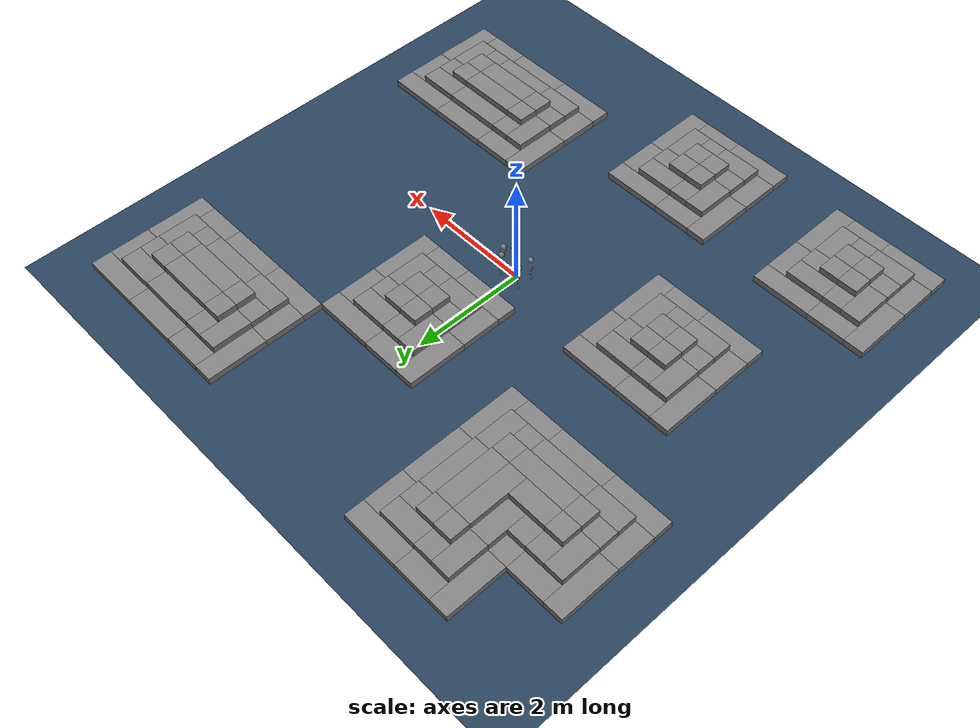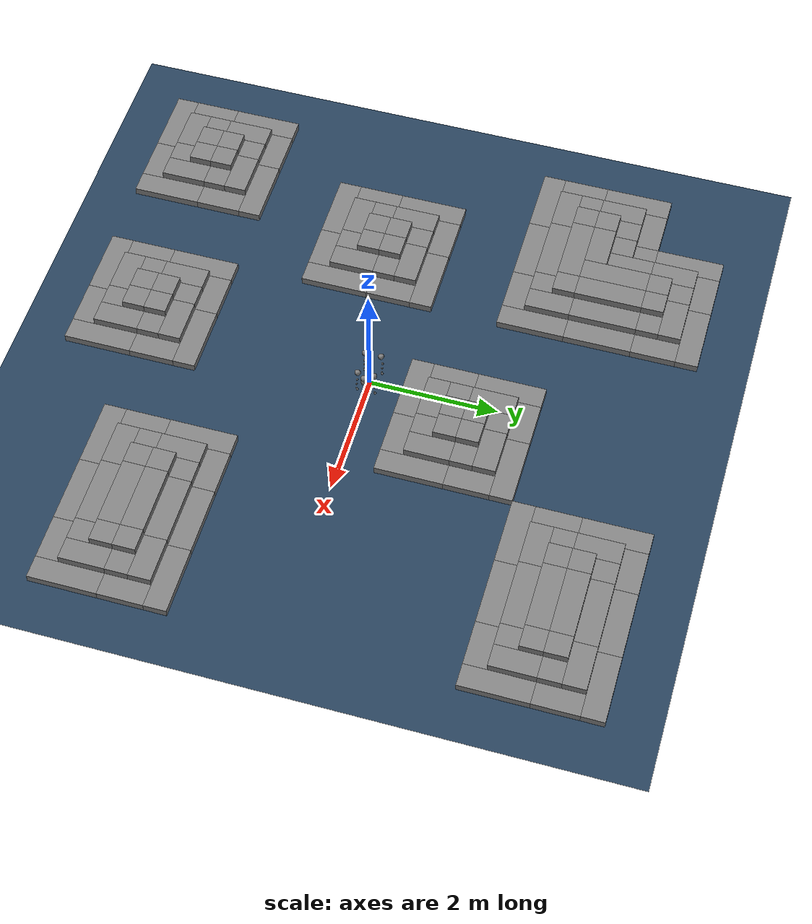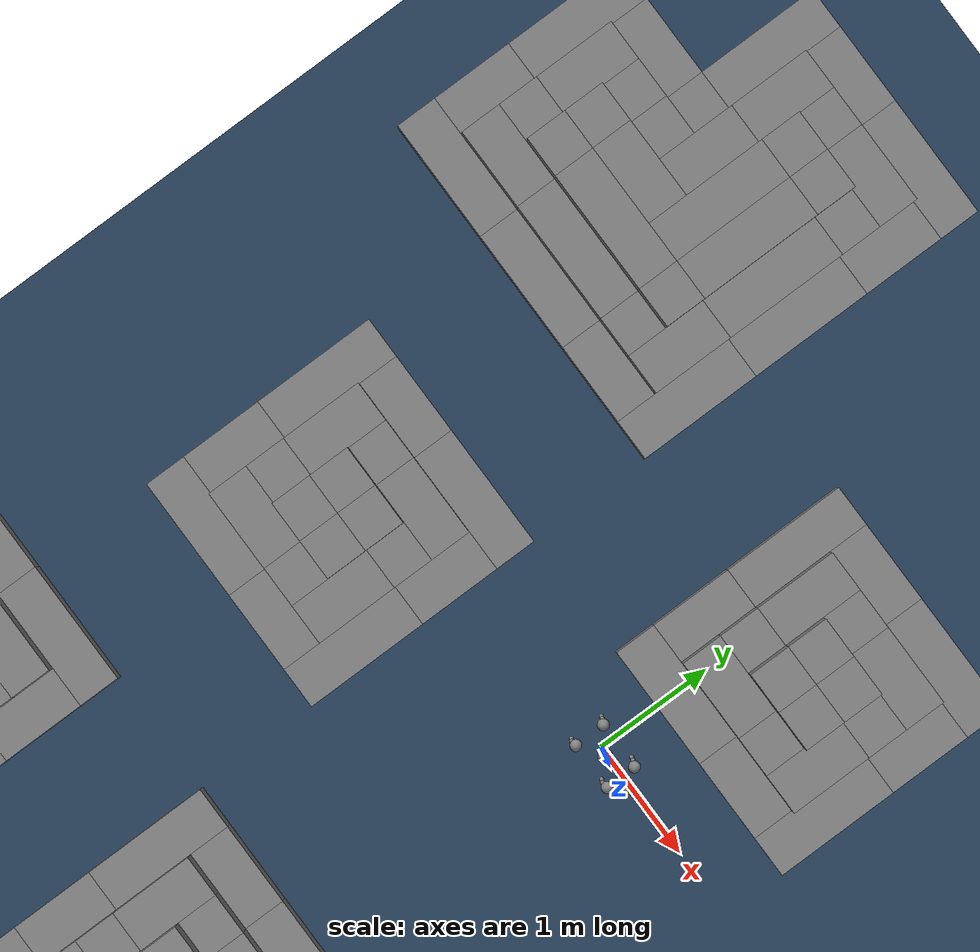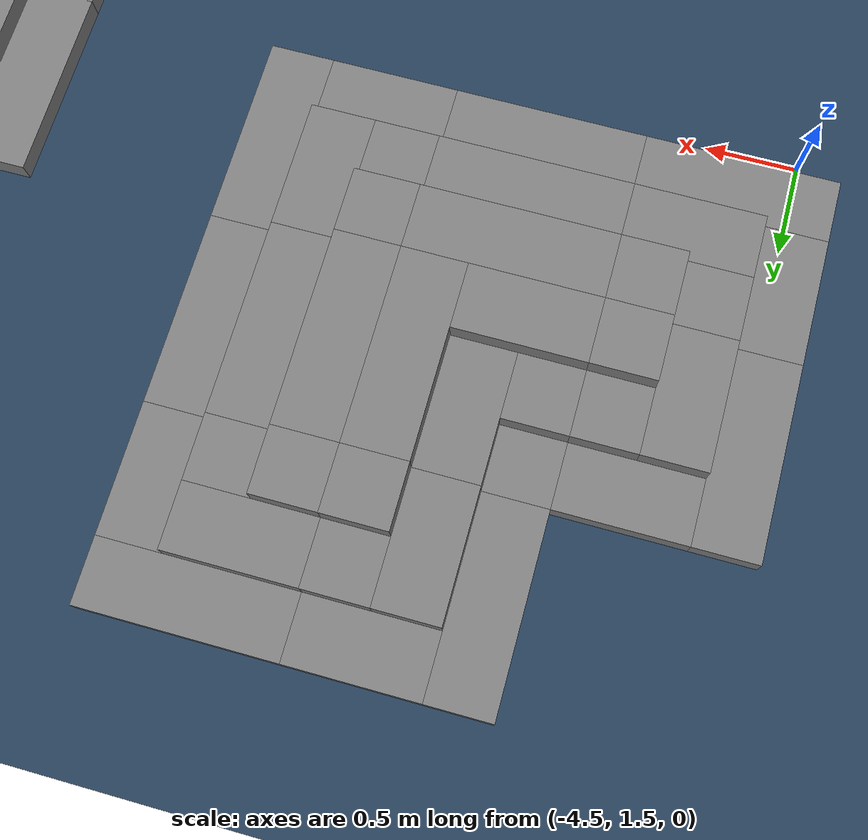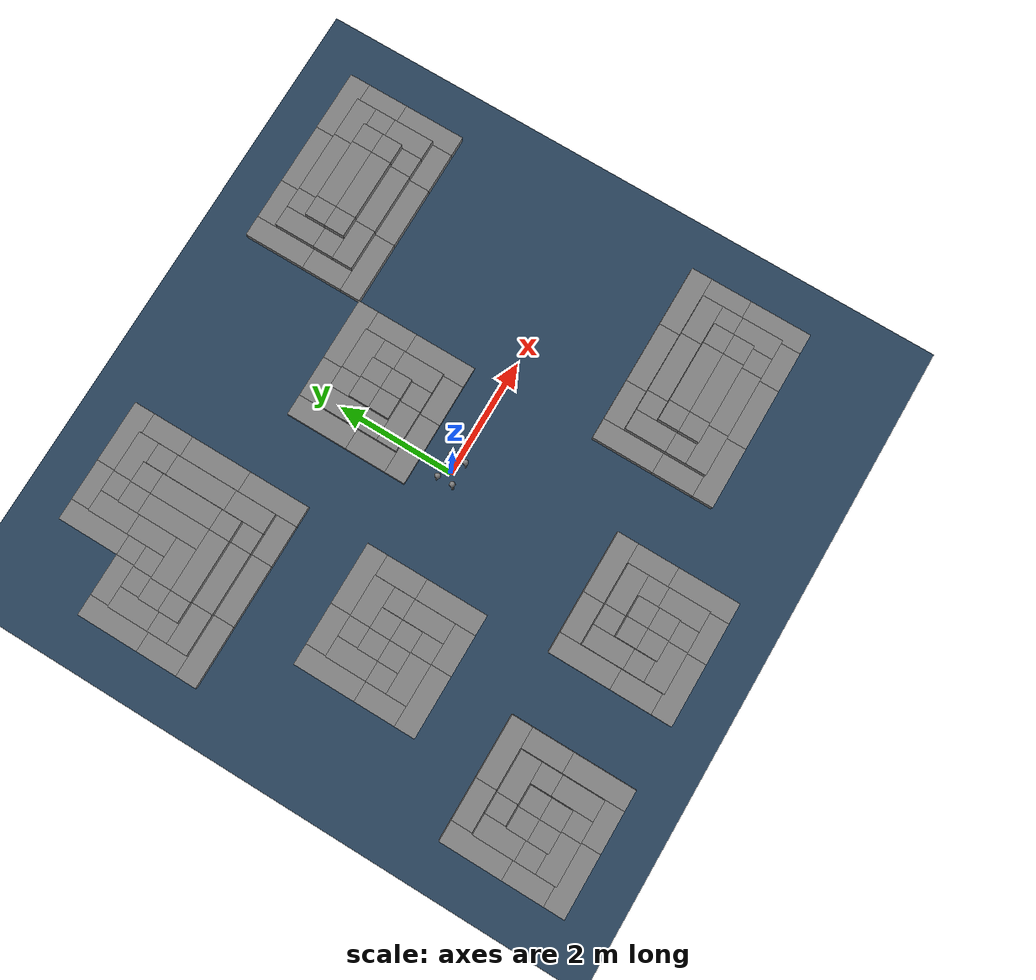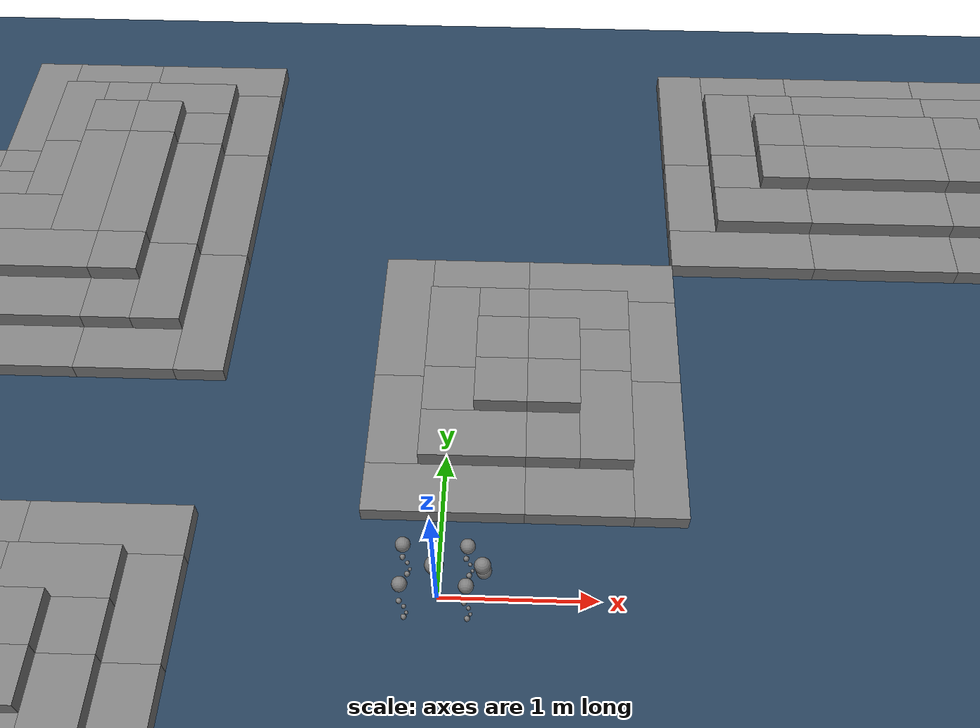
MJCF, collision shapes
<mujoco model="go2 scene">
  <include file="go2_mjx_feetonly.xml" />

  <statistic center="0 0 0.1" extent="0.8" />

  <visual>
    <headlight diffuse="0.6 0.6 0.6" ambient="0.3 0.3 0.3" specular="0 0 0" />
    <rgba haze="0.15 0.25 0.35 1" />
    <global azimuth="-130" elevation="-20" />
  </visual>

  <asset>
    <texture type="skybox" builtin="gradient" rgb1="0.3 0.5 0.7" rgb2="0 0 0" width="512" height="3072" />
    <texture type="2d" name="groundplane" builtin="checker" mark="edge" rgb1="0.2 0.3 0.4" rgb2="0.1 0.2 0.3" markrgb="0.8 0.8 0.8" width="300" height="300" />
    <material name="groundplane" texture="groundplane" texuniform="true" texrepeat="5 5" reflectance="0.2" />
  </asset>

  <worldbody>
    <light pos="0 0 1.5" dir="0 0 -1" directional="true" />
    <geom name="floor" pos="0 0 0" size="0 0 0.01" type="plane" contype="2" conaffinity="1" material="groundplane" />
  <body pos="-3.849999999999999 -3.849999999999999 0.18" quat="0.7071067811865476 0.0 0.0 -0.7071067811865475" name="box_AIFip"><geom type="box" size="0.175 0.175 0.18" contype="2" conaffinity="1" /></body><body pos="-4.0249999999999995 -4.199999999999999 0.12" quat="0.7071067811865476 0.0 0.0 -0.7071067811865475" name="box_nv4MJ"><geom type="box" size="0.175 0.35 0.12" contype="2" conaffinity="1" /></body><body pos="-4.199999999999999 -4.549999999999999 0.06" quat="0.7071067811865476 0.0 0.0 -0.7071067811865475" name="box_QGifX"><geom type="box" size="0.175 0.5249999999999999 0.06" contype="2" conaffinity="1" /></body><body pos="-4.199999999999999 -3.849999999999999 0.12" quat="1.0 0.0 0.0 0.0" name="box_r6D7p"><geom type="box" size="0.175 0.175 0.12" contype="2" conaffinity="1" /></body><body pos="-4.549999999999999 -4.0249999999999995 0.06" quat="1.0 0.0 0.0 0.0" name="box_xC0N9"><geom type="box" size="0.175 0.35 0.06" contype="2" conaffinity="1" /></body><body pos="-3.849999999999999 -3.4999999999999996 0.18" quat="6.123233995736766e-17 0.0 0.0 1.0" name="box_DC2EQ"><geom type="box" size="0.175 0.175 0.18" contype="2" conaffinity="1" /></body><body pos="-4.199999999999999 -3.3249999999999993 0.12" quat="6.123233995736766e-17 0.0 0.0 1.0" name="box_uaHC7"><geom type="box" size="0.175 0.35 0.12" contype="2" conaffinity="1" /></body><body pos="-4.549999999999999 -3.1499999999999995 0.06" quat="6.123233995736766e-17 0.0 0.0 1.0" name="box_5Ppau"><geom type="box" size="0.175 0.5249999999999999 0.06" contype="2" conaffinity="1" /></body><body pos="-3.849999999999999 -3.1499999999999995 0.12" quat="-0.7071067811865475 -0.0 0.0 0.7071067811865476" name="box_zx6eL"><geom type="box" size="0.175 0.175 0.12" contype="2" conaffinity="1" /></body><body pos="-4.0249999999999995 -2.7999999999999994 0.06" quat="-0.7071067811865475 -0.0 0.0 0.7071067811865476" name="box_DW6wW"><geom type="box" size="0.175 0.35 0.06" contype="2" conaffinity="1" /></body><body pos="-3.849999999999999 2.4499999999999997 0.18" quat="0.7071067811865476 0.0 0.0 -0.7071067811865475" name="box_NU5Nk"><geom type="box" size="0.175 0.175 0.18" contype="2" conaffinity="1" /></body><body pos="-4.0249999999999995 2.0999999999999996 0.12" quat="0.7071067811865476 0.0 0.0 -0.7071067811865475" name="box_gkHAz"><geom type="box" size="0.175 0.35 0.12" contype="2" conaffinity="1" /></body><body pos="-4.199999999999999 1.7499999999999996 0.06" quat="0.7071067811865476 0.0 0.0 -0.7071067811865475" name="box_mhC9z"><geom type="box" size="0.175 0.5249999999999999 0.06" contype="2" conaffinity="1" /></body><body pos="-4.199999999999999 2.4499999999999997 0.12" quat="1.0 0.0 0.0 0.0" name="box_bfGwb"><geom type="box" size="0.175 0.175 0.12" contype="2" conaffinity="1" /></body><body pos="-4.549999999999999 2.2749999999999995 0.06" quat="1.0 0.0 0.0 0.0" name="box_3OCio"><geom type="box" size="0.175 0.35 0.06" contype="2" conaffinity="1" /></body><body pos="-3.849999999999999 2.7999999999999994 0.18" quat="6.123233995736766e-17 0.0 0.0 1.0" name="box_HyhEw"><geom type="box" size="0.175 0.175 0.18" contype="2" conaffinity="1" /></body><body pos="-4.199999999999999 2.9749999999999996 0.12" quat="6.123233995736766e-17 0.0 0.0 1.0" name="box_ZMXPr"><geom type="box" size="0.175 0.35 0.12" contype="2" conaffinity="1" /></body><body pos="-4.549999999999999 3.1499999999999995 0.06" quat="6.123233995736766e-17 0.0 0.0 1.0" name="box_W3EP4"><geom type="box" size="0.175 0.5249999999999999 0.06" contype="2" conaffinity="1" /></body><body pos="-3.849999999999999 3.1499999999999995 0.12" quat="-0.7071067811865475 -0.0 0.0 0.7071067811865476" name="box_88S2Z"><geom type="box" size="0.175 0.175 0.12" contype="2" conaffinity="1" /></body><body pos="-4.0249999999999995 3.4999999999999996 0.06" quat="-0.7071067811865475 -0.0 0.0 0.7071067811865476" name="box_mtWqh"><geom type="box" size="0.175 0.35 0.06" contype="2" conaffinity="1" /></body><body pos="-3.4999999999999996 -3.849999999999999 0.18" quat="1.0 0.0 0.0 0.0" name="box_i3d27"><geom type="box" size="0.175 0.175 0.18" contype="2" conaffinity="1" /></body><body pos="-3.1499999999999995 -4.0249999999999995 0.12" quat="1.0 0.0 0.0 0.0" name="box_wXhQ3"><geom type="box" size="0.175 0.35 0.12" contype="2" conaffinity="1" /></body><body pos="-2.7999999999999994 -4.199999999999999 0.06" quat="1.0 0.0 0.0 0.0" name="box_G2qaF"><geom type="box" size="0.175 0.5249999999999999 0.06" contype="2" conaffinity="1" /></body><body pos="-3.4999999999999996 -4.199999999999999 0.12" quat="0.7071067811865476 0.0 0.0 0.7071067811865475" name="box_hZyme"><geom type="box" size="0.175 0.175 0.12" contype="2" conaffinity="1" /></body><body pos="-3.3249999999999993 -4.549999999999999 0.06" quat="0.7071067811865476 0.0 0.0 0.7071067811865475" name="box_RIgqd"><geom type="box" size="0.175 0.35 0.06" contype="2" conaffinity="1" /></body><body pos="-3.4999999999999996 -3.4999999999999996 0.18" quat="0.7071067811865476 0.0 0.0 0.7071067811865475" name="box_a3YLr"><geom type="box" size="0.175 0.175 0.18" contype="2" conaffinity="1" /></body><body pos="-3.3249999999999993 -3.1499999999999995 0.12" quat="0.7071067811865476 0.0 0.0 0.7071067811865475" name="box_hRZOy"><geom type="box" size="0.175 0.35 0.12" contype="2" conaffinity="1" /></body><body pos="-3.1499999999999995 -2.7999999999999994 0.06" quat="0.7071067811865476 0.0 0.0 0.7071067811865475" name="box_eRNLj"><geom type="box" size="0.175 0.5249999999999999 0.06" contype="2" conaffinity="1" /></body><body pos="-3.1499999999999995 -3.4999999999999996 0.12" quat="6.123233995736766e-17 0.0 0.0 1.0" name="box_xsIkE"><geom type="box" size="0.175 0.175 0.12" contype="2" conaffinity="1" /></body><body pos="-2.7999999999999994 -3.3249999999999993 0.06" quat="6.123233995736766e-17 0.0 0.0 1.0" name="box_dg2Ks"><geom type="box" size="0.175 0.35 0.06" contype="2" conaffinity="1" /></body><body pos="-2.7999999999999994 -0.6999999999999998 0.18" quat="0.7071067811865476 0.0 0.0 -0.7071067811865475" name="box_KA7wU"><geom type="box" size="0.175 0.175 0.18" contype="2" conaffinity="1" /></body><body pos="-2.9749999999999996 -1.0499999999999998 0.12" quat="0.7071067811865476 0.0 0.0 -0.7071067811865475" name="box_vxfkl"><geom type="box" size="0.175 0.35 0.12" contype="2" conaffinity="1" /></body><body pos="-3.1499999999999995 -1.4 0.06" quat="0.7071067811865476 0.0 0.0 -0.7071067811865475" name="box_wRV5f"><geom type="box" size="0.175 0.5249999999999999 0.06" contype="2" conaffinity="1" /></body><body pos="-3.1499999999999995 -0.7 0.12" quat="1.0 0.0 0.0 0.0" name="box_qTnPS"><geom type="box" size="0.175 0.175 0.12" contype="2" conaffinity="1" /></body><body pos="-3.4999999999999996 -0.8749999999999999 0.06" quat="1.0 0.0 0.0 0.0" name="box_PWXL8"><geom type="box" size="0.175 0.35 0.06" contype="2" conaffinity="1" /></body><body pos="-2.7999999999999994 -0.35 0.18" quat="6.123233995736766e-17 0.0 0.0 1.0" name="box_uhnH9"><geom type="box" size="0.175 0.175 0.18" contype="2" conaffinity="1" /></body><body pos="-3.1499999999999995 -0.17499999999999993 0.12" quat="6.123233995736766e-17 0.0 0.0 1.0" name="box_SK9O6"><geom type="box" size="0.175 0.35 0.12" contype="2" conaffinity="1" /></body><body pos="-3.4999999999999996 9.837378920141519e-17 0.06" quat="6.123233995736766e-17 0.0 0.0 1.0" name="box_eXKTR"><geom type="box" size="0.175 0.5249999999999999 0.06" contype="2" conaffinity="1" /></body><body pos="-2.7999999999999994 -8.782805723978197e-18 0.12" quat="-0.7071067811865475 -0.0 0.0 0.7071067811865476" name="box_4VFML"><geom type="box" size="0.175 0.175 0.12" contype="2" conaffinity="1" /></body><body pos="-2.9749999999999996 0.35 0.06" quat="-0.7071067811865475 -0.0 0.0 0.7071067811865476" name="box_xr35J"><geom type="box" size="0.175 0.35 0.06" contype="2" conaffinity="1" /></body><body pos="-3.1499999999999995 1.7499999999999998 0.06" quat="0.7071067811865476 0.0 0.0 0.7071067811865475" name="box_yuuOr"><geom type="box" size="0.175 0.5249999999999999 0.06" contype="2" conaffinity="1" /></body><body pos="-3.1499999999999995 2.0999999999999996 0.12" quat="0.7071067811865476 0.0 0.0 0.7071067811865475" name="box_yrxDo"><geom type="box" size="0.175 0.5249999999999999 0.12" contype="2" conaffinity="1" /></body><body pos="-3.1499999999999995 2.4499999999999997 0.18" quat="0.7071067811865476 0.0 0.0 0.7071067811865475" name="box_pL0op"><geom type="box" size="0.175 0.5249999999999999 0.18" contype="2" conaffinity="1" /></body><body pos="-3.4999999999999996 3.4999999999999996 0.06" quat="1.0 0.0 0.0 0.0" name="box_T4rF1"><geom type="box" size="0.175 0.175 0.06" contype="2" conaffinity="1" /></body><body pos="-3.1499999999999995 3.3249999999999993 0.12" quat="1.0 0.0 0.0 0.0" name="box_aNq4J"><geom type="box" size="0.175 0.35 0.12" contype="2" conaffinity="1" /></body><body pos="-2.7999999999999994 3.1499999999999995 0.18" quat="1.0 0.0 0.0 0.0" name="box_5J7Sk"><geom type="box" size="0.175 0.5249999999999999 0.18" contype="2" conaffinity="1" /></body><body pos="-3.4999999999999996 3.1499999999999995 0.12" quat="0.7071067811865476 0.0 0.0 0.7071067811865475" name="box_yrr0K"><geom type="box" size="0.175 0.175 0.12" contype="2" conaffinity="1" /></body><body pos="-3.3249999999999993 2.7999999999999994 0.18" quat="0.7071067811865476 0.0 0.0 0.7071067811865475" name="box_4k6K8"><geom type="box" size="0.175 0.35 0.18" contype="2" conaffinity="1" /></body><body pos="-2.7999999999999994 3.849999999999999 0.18" quat="6.123233995736766e-17 0.0 0.0 1.0" name="box_h932d"><geom type="box" size="0.175 0.175 0.18" contype="2" conaffinity="1" /></body><body pos="-3.1499999999999995 4.0249999999999995 0.12" quat="6.123233995736766e-17 0.0 0.0 1.0" name="box_4vOJz"><geom type="box" size="0.175 0.35 0.12" contype="2" conaffinity="1" /></body><body pos="-3.4999999999999996 4.199999999999999 0.06" quat="6.123233995736766e-17 0.0 0.0 1.0" name="box_5oMNA"><geom type="box" size="0.175 0.5249999999999999 0.06" contype="2" conaffinity="1" /></body><body pos="-2.7999999999999994 4.199999999999999 0.12" quat="-0.7071067811865475 -0.0 0.0 0.7071067811865476" name="box_qfQFT"><geom type="box" size="0.175 0.175 0.12" contype="2" conaffinity="1" /></body><body pos="-2.9749999999999996 4.549999999999999 0.06" quat="-0.7071067811865475 -0.0 0.0 0.7071067811865476" name="box_kBUMP"><geom type="box" size="0.175 0.35 0.06" contype="2" conaffinity="1" /></body><body pos="-2.4499999999999997 -0.7 0.18" quat="1.0 0.0 0.0 0.0" name="box_cWTyL"><geom type="box" size="0.175 0.175 0.18" contype="2" conaffinity="1" /></body><body pos="-2.0999999999999996 -0.8749999999999999 0.12" quat="1.0 0.0 0.0 0.0" name="box_lNJ7c"><geom type="box" size="0.175 0.35 0.12" contype="2" conaffinity="1" /></body><body pos="-1.7499999999999996 -1.0499999999999998 0.06" quat="1.0 0.0 0.0 0.0" name="box_scc5J"><geom type="box" size="0.175 0.5249999999999999 0.06" contype="2" conaffinity="1" /></body><body pos="-2.4499999999999997 -1.0499999999999998 0.12" quat="0.7071067811865476 0.0 0.0 0.7071067811865475" name="box_IepkR"><geom type="box" size="0.175 0.175 0.12" contype="2" conaffinity="1" /></body><body pos="-2.2749999999999995 -1.4 0.06" quat="0.7071067811865476 0.0 0.0 0.7071067811865475" name="box_j6lY9"><geom type="box" size="0.175 0.35 0.06" contype="2" conaffinity="1" /></body><body pos="-2.4499999999999997 -0.35 0.18" quat="0.7071067811865476 0.0 0.0 0.7071067811865475" name="box_6NywM"><geom type="box" size="0.175 0.175 0.18" contype="2" conaffinity="1" /></body><body pos="-2.2749999999999995 1.0715659492539337e-17 0.12" quat="0.7071067811865476 0.0 0.0 0.7071067811865475" name="box_Ntf3K"><geom type="box" size="0.175 0.35 0.12" contype="2" conaffinity="1" /></body><body pos="-2.0999999999999996 0.35 0.06" quat="0.7071067811865476 0.0 0.0 0.7071067811865475" name="box_AOQFd"><geom type="box" size="0.175 0.5249999999999999 0.06" contype="2" conaffinity="1" /></body><body pos="-2.0999999999999996 -0.3499999999999999 0.12" quat="6.123233995736766e-17 0.0 0.0 1.0" name="box_Sf9GV"><geom type="box" size="0.175 0.175 0.12" contype="2" conaffinity="1" /></body><body pos="-1.7499999999999996 -0.175 0.06" quat="6.123233995736766e-17 0.0 0.0 1.0" name="box_QyYU8"><geom type="box" size="0.175 0.35 0.06" contype="2" conaffinity="1" /></body><body pos="-2.4499999999999997 2.4499999999999997 0.18" quat="1.0 0.0 0.0 0.0" name="box_JuqR2"><geom type="box" size="0.175 0.175 0.18" contype="2" conaffinity="1" /></body><body pos="-2.0999999999999996 2.2749999999999995 0.12" quat="1.0 0.0 0.0 0.0" name="box_XTDxY"><geom type="box" size="0.175 0.35 0.12" contype="2" conaffinity="1" /></body><body pos="-1.7499999999999996 2.0999999999999996 0.06" quat="1.0 0.0 0.0 0.0" name="box_7fyXA"><geom type="box" size="0.175 0.5249999999999999 0.06" contype="2" conaffinity="1" /></body><body pos="-2.4499999999999997 2.0999999999999996 0.12" quat="0.7071067811865476 0.0 0.0 0.7071067811865475" name="box_QERk6"><geom type="box" size="0.175 0.175 0.12" contype="2" conaffinity="1" /></body><body pos="-2.2749999999999995 1.7499999999999996 0.06" quat="0.7071067811865476 0.0 0.0 0.7071067811865475" name="box_Wvl9c"><geom type="box" size="0.175 0.35 0.06" contype="2" conaffinity="1" /></body><body pos="-1.7499999999999998 3.1499999999999995 0.06" quat="6.123233995736766e-17 0.0 0.0 1.0" name="box_OwxfQ"><geom type="box" size="0.175 0.5249999999999999 0.06" contype="2" conaffinity="1" /></body><body pos="-2.0999999999999996 3.1499999999999995 0.12" quat="6.123233995736766e-17 0.0 0.0 1.0" name="box_6I2Un"><geom type="box" size="0.175 0.5249999999999999 0.12" contype="2" conaffinity="1" /></body><body pos="-2.4499999999999997 3.1499999999999995 0.18" quat="6.123233995736766e-17 0.0 0.0 1.0" name="box_XK8Y8"><geom type="box" size="0.175 0.5249999999999999 0.18" contype="2" conaffinity="1" /></body><body pos="-2.4499999999999997 3.849999999999999 0.18" quat="0.7071067811865476 0.0 0.0 0.7071067811865475" name="box_4FMN6"><geom type="box" size="0.175 0.175 0.18" contype="2" conaffinity="1" /></body><body pos="-2.2749999999999995 4.199999999999999 0.12" quat="0.7071067811865476 0.0 0.0 0.7071067811865475" name="box_xaOG8"><geom type="box" size="0.175 0.35 0.12" contype="2" conaffinity="1" /></body><body pos="-2.0999999999999996 4.549999999999999 0.06" quat="0.7071067811865476 0.0 0.0 0.7071067811865475" name="box_53BPu"><geom type="box" size="0.175 0.5249999999999999 0.06" contype="2" conaffinity="1" /></body><body pos="-2.0999999999999996 3.849999999999999 0.12" quat="6.123233995736766e-17 0.0 0.0 1.0" name="box_2a0wY"><geom type="box" size="0.175 0.175 0.12" contype="2" conaffinity="1" /></body><body pos="-1.7499999999999996 4.0249999999999995 0.06" quat="6.123233995736766e-17 0.0 0.0 1.0" name="box_TbYOM"><geom type="box" size="0.175 0.35 0.06" contype="2" conaffinity="1" /></body><body pos="-0.7 -3.849999999999999 0.18" quat="0.7071067811865476 0.0 0.0 -0.7071067811865475" name="box_7bIcF"><geom type="box" size="0.175 0.175 0.18" contype="2" conaffinity="1" /></body><body pos="-0.8749999999999999 -4.199999999999999 0.12" quat="0.7071067811865476 0.0 0.0 -0.7071067811865475" name="box_SNvJc"><geom type="box" size="0.175 0.35 0.12" contype="2" conaffinity="1" /></body><body pos="-1.0499999999999998 -4.549999999999999 0.06" quat="0.7071067811865476 0.0 0.0 -0.7071067811865475" name="box_4tV38"><geom type="box" size="0.175 0.5249999999999999 0.06" contype="2" conaffinity="1" /></body><body pos="-1.0499999999999998 -3.849999999999999 0.12" quat="1.0 0.0 0.0 0.0" name="box_otgOa"><geom type="box" size="0.175 0.175 0.12" contype="2" conaffinity="1" /></body><body pos="-1.4 -4.0249999999999995 0.06" quat="1.0 0.0 0.0 0.0" name="box_8IZMy"><geom type="box" size="0.175 0.35 0.06" contype="2" conaffinity="1" /></body><body pos="-0.7 -3.4999999999999996 0.18" quat="6.123233995736766e-17 0.0 0.0 1.0" name="box_E4EBZ"><geom type="box" size="0.175 0.175 0.18" contype="2" conaffinity="1" /></body><body pos="-1.0499999999999998 -3.3249999999999993 0.12" quat="6.123233995736766e-17 0.0 0.0 1.0" name="box_Secfa"><geom type="box" size="0.175 0.35 0.12" contype="2" conaffinity="1" /></body><body pos="-1.4 -3.1499999999999995 0.06" quat="6.123233995736766e-17 0.0 0.0 1.0" name="box_Kb8Ib"><geom type="box" size="0.175 0.5249999999999999 0.06" contype="2" conaffinity="1" /></body><body pos="-0.7 -3.1499999999999995 0.12" quat="-0.7071067811865475 -0.0 0.0 0.7071067811865476" name="box_fIGuS"><geom type="box" size="0.175 0.175 0.12" contype="2" conaffinity="1" /></body><body pos="-0.8749999999999998 -2.7999999999999994 0.06" quat="-0.7071067811865475 -0.0 0.0 0.7071067811865476" name="box_RD8Qn"><geom type="box" size="0.175 0.35 0.06" contype="2" conaffinity="1" /></body><body pos="-0.35 -3.849999999999999 0.18" quat="1.0 0.0 0.0 0.0" name="box_FAtda"><geom type="box" size="0.175 0.175 0.18" contype="2" conaffinity="1" /></body><body pos="0.0 -4.0249999999999995 0.12" quat="1.0 0.0 0.0 0.0" name="box_SJeok"><geom type="box" size="0.175 0.35 0.12" contype="2" conaffinity="1" /></body><body pos="0.35 -4.199999999999999 0.06" quat="1.0 0.0 0.0 0.0" name="box_mf57p"><geom type="box" size="0.175 0.5249999999999999 0.06" contype="2" conaffinity="1" /></body><body pos="-0.3499999999999999 -4.199999999999999 0.12" quat="0.7071067811865476 0.0 0.0 0.7071067811865475" name="box_spx2j"><geom type="box" size="0.175 0.175 0.12" contype="2" conaffinity="1" /></body><body pos="-0.17499999999999996 -4.549999999999999 0.06" quat="0.7071067811865476 0.0 0.0 0.7071067811865475" name="box_XdNSW"><geom type="box" size="0.175 0.35 0.06" contype="2" conaffinity="1" /></body><body pos="-0.3499999999999999 -3.4999999999999996 0.18" quat="0.7071067811865476 0.0 0.0 0.7071067811865475" name="box_EEI0t"><geom type="box" size="0.175 0.175 0.18" contype="2" conaffinity="1" /></body><body pos="-0.17499999999999993 -3.1499999999999995 0.12" quat="0.7071067811865476 0.0 0.0 0.7071067811865475" name="box_NUCGI"><geom type="box" size="0.175 0.35 0.12" contype="2" conaffinity="1" /></body><body pos="7.694247021633651e-17 -2.7999999999999994 0.06" quat="0.7071067811865476 0.0 0.0 0.7071067811865475" name="box_rSQTA"><geom type="box" size="0.175 0.5249999999999999 0.06" contype="2" conaffinity="1" /></body><body pos="1.2648513261100473e-17 -3.4999999999999996 0.12" quat="6.123233995736766e-17 0.0 0.0 1.0" name="box_IMLNH"><geom type="box" size="0.175 0.175 0.12" contype="2" conaffinity="1" /></body><body pos="0.35000000000000003 -3.3249999999999993 0.06" quat="6.123233995736766e-17 0.0 0.0 1.0" name="box_WuqBw"><geom type="box" size="0.175 0.35 0.06" contype="2" conaffinity="1" /></body><body pos="0.3499999999999999 1.4 0.18" quat="0.7071067811865476 0.0 0.0 -0.7071067811865475" name="box_4DMQi"><geom type="box" size="0.175 0.175 0.18" contype="2" conaffinity="1" /></body><body pos="0.17499999999999993 1.0499999999999998 0.12" quat="0.7071067811865476 0.0 0.0 -0.7071067811865475" name="box_cO15y"><geom type="box" size="0.175 0.35 0.12" contype="2" conaffinity="1" /></body><body pos="-3.4079832246179144e-17 0.6999999999999998 0.06" quat="0.7071067811865476 0.0 0.0 -0.7071067811865475" name="box_dtMOE"><geom type="box" size="0.175 0.5249999999999999 0.06" contype="2" conaffinity="1" /></body><body pos="-5.551115123125783e-17 1.3999999999999997 0.12" quat="1.0 0.0 0.0 0.0" name="box_XSZeR"><geom type="box" size="0.175 0.175 0.12" contype="2" conaffinity="1" /></body><body pos="-0.35000000000000003 1.2249999999999996 0.06" quat="1.0 0.0 0.0 0.0" name="box_k0Asx"><geom type="box" size="0.175 0.35 0.06" contype="2" conaffinity="1" /></body><body pos="0.3499999999999999 1.7499999999999996 0.18" quat="6.123233995736766e-17 0.0 0.0 1.0" name="box_HveNM"><geom type="box" size="0.175 0.175 0.18" contype="2" conaffinity="1" /></body><body pos="-2.1431318985078674e-17 1.9249999999999998 0.12" quat="6.123233995736766e-17 0.0 0.0 1.0" name="box_4zgqC"><geom type="box" size="0.175 0.35 0.12" contype="2" conaffinity="1" /></body><body pos="-0.35 2.0999999999999996 0.06" quat="6.123233995736766e-17 0.0 0.0 1.0" name="box_lQdYe"><geom type="box" size="0.175 0.5249999999999999 0.06" contype="2" conaffinity="1" /></body><body pos="0.3499999999999999 2.0999999999999996 0.12" quat="-0.7071067811865475 -0.0 0.0 0.7071067811865476" name="box_nDVIr"><geom type="box" size="0.175 0.175 0.12" contype="2" conaffinity="1" /></body><body pos="0.175 2.4499999999999997 0.06" quat="-0.7071067811865475 -0.0 0.0 0.7071067811865476" name="box_37aMP"><geom type="box" size="0.175 0.35 0.06" contype="2" conaffinity="1" /></body><body pos="0.6999999999999998 1.3999999999999997 0.18" quat="1.0 0.0 0.0 0.0" name="box_3aCSB"><geom type="box" size="0.175 0.175 0.18" contype="2" conaffinity="1" /></body><body pos="1.0499999999999998 1.2249999999999996 0.12" quat="1.0 0.0 0.0 0.0" name="box_qxKgT"><geom type="box" size="0.175 0.35 0.12" contype="2" conaffinity="1" /></body><body pos="1.4 1.0499999999999998 0.06" quat="1.0 0.0 0.0 0.0" name="box_ySCec"><geom type="box" size="0.175 0.5249999999999999 0.06" contype="2" conaffinity="1" /></body><body pos="0.7 1.0499999999999998 0.12" quat="0.7071067811865476 0.0 0.0 0.7071067811865475" name="box_HyvRJ"><geom type="box" size="0.175 0.175 0.12" contype="2" conaffinity="1" /></body><body pos="0.8749999999999999 0.6999999999999997 0.06" quat="0.7071067811865476 0.0 0.0 0.7071067811865475" name="box_DyDKA"><geom type="box" size="0.175 0.35 0.06" contype="2" conaffinity="1" /></body><body pos="0.7 1.7499999999999996 0.18" quat="0.7071067811865476 0.0 0.0 0.7071067811865475" name="box_X9WBH"><geom type="box" size="0.175 0.175 0.18" contype="2" conaffinity="1" /></body><body pos="0.8749999999999999 2.0999999999999996 0.12" quat="0.7071067811865476 0.0 0.0 0.7071067811865475" name="box_W6C9T"><geom type="box" size="0.175 0.35 0.12" contype="2" conaffinity="1" /></body><body pos="1.0499999999999998 2.4499999999999997 0.06" quat="0.7071067811865476 0.0 0.0 0.7071067811865475" name="box_uYyvj"><geom type="box" size="0.175 0.5249999999999999 0.06" contype="2" conaffinity="1" /></body><body pos="1.0499999999999998 1.7499999999999998 0.12" quat="6.123233995736766e-17 0.0 0.0 1.0" name="box_IC9FU"><geom type="box" size="0.175 0.175 0.12" contype="2" conaffinity="1" /></body><body pos="1.4 1.9249999999999996 0.06" quat="6.123233995736766e-17 0.0 0.0 1.0" name="box_YPCoy"><geom type="box" size="0.175 0.35 0.06" contype="2" conaffinity="1" /></body><body pos="2.4499999999999997 -2.7999999999999994 0.18" quat="0.7071067811865476 0.0 0.0 -0.7071067811865475" name="box_G1pV9"><geom type="box" size="0.175 0.175 0.18" contype="2" conaffinity="1" /></body><body pos="2.2749999999999995 -3.1499999999999995 0.12" quat="0.7071067811865476 0.0 0.0 -0.7071067811865475" name="box_G7yY5"><geom type="box" size="0.175 0.35 0.12" contype="2" conaffinity="1" /></body><body pos="2.0999999999999996 -3.4999999999999996 0.06" quat="0.7071067811865476 0.0 0.0 -0.7071067811865475" name="box_ETObG"><geom type="box" size="0.175 0.5249999999999999 0.06" contype="2" conaffinity="1" /></body><body pos="2.0999999999999996 -2.7999999999999994 0.12" quat="1.0 0.0 0.0 0.0" name="box_DsQ7D"><geom type="box" size="0.175 0.175 0.12" contype="2" conaffinity="1" /></body><body pos="1.7499999999999996 -2.9749999999999996 0.06" quat="1.0 0.0 0.0 0.0" name="box_d1n8c"><geom type="box" size="0.175 0.35 0.06" contype="2" conaffinity="1" /></body><body pos="2.4499999999999997 -2.4499999999999997 0.18" quat="6.123233995736766e-17 0.0 0.0 1.0" name="box_ufEVV"><geom type="box" size="0.175 0.175 0.18" contype="2" conaffinity="1" /></body><body pos="2.0999999999999996 -2.2749999999999995 0.12" quat="6.123233995736766e-17 0.0 0.0 1.0" name="box_aT53F"><geom type="box" size="0.175 0.35 0.12" contype="2" conaffinity="1" /></body><body pos="1.7499999999999996 -2.0999999999999996 0.06" quat="6.123233995736766e-17 0.0 0.0 1.0" name="box_X9lDm"><geom type="box" size="0.175 0.5249999999999999 0.06" contype="2" conaffinity="1" /></body><body pos="2.4499999999999997 -2.0999999999999996 0.12" quat="-0.7071067811865475 -0.0 0.0 0.7071067811865476" name="box_JPDWg"><geom type="box" size="0.175 0.175 0.12" contype="2" conaffinity="1" /></body><body pos="2.2749999999999995 -1.7499999999999996 0.06" quat="-0.7071067811865475 -0.0 0.0 0.7071067811865476" name="box_20euh"><geom type="box" size="0.175 0.35 0.06" contype="2" conaffinity="1" /></body><body pos="2.4499999999999997 3.4999999999999996 0.18" quat="0.7071067811865476 0.0 0.0 -0.7071067811865475" name="box_vpt0u"><geom type="box" size="0.175 0.175 0.18" contype="2" conaffinity="1" /></body><body pos="2.2749999999999995 3.1499999999999995 0.12" quat="0.7071067811865476 0.0 0.0 -0.7071067811865475" name="box_RzF02"><geom type="box" size="0.175 0.35 0.12" contype="2" conaffinity="1" /></body><body pos="2.0999999999999996 2.7999999999999994 0.06" quat="0.7071067811865476 0.0 0.0 -0.7071067811865475" name="box_JYfbn"><geom type="box" size="0.175 0.5249999999999999 0.06" contype="2" conaffinity="1" /></body><body pos="2.0999999999999996 3.4999999999999996 0.12" quat="1.0 0.0 0.0 0.0" name="box_2HaCQ"><geom type="box" size="0.175 0.175 0.12" contype="2" conaffinity="1" /></body><body pos="1.7499999999999996 3.3249999999999993 0.06" quat="1.0 0.0 0.0 0.0" name="box_Q6ouf"><geom type="box" size="0.175 0.35 0.06" contype="2" conaffinity="1" /></body><body pos="2.4499999999999997 3.849999999999999 0.18" quat="6.123233995736766e-17 0.0 0.0 1.0" name="box_DArmh"><geom type="box" size="0.175 0.175 0.18" contype="2" conaffinity="1" /></body><body pos="2.0999999999999996 4.0249999999999995 0.12" quat="6.123233995736766e-17 0.0 0.0 1.0" name="box_QNS02"><geom type="box" size="0.175 0.35 0.12" contype="2" conaffinity="1" /></body><body pos="1.7499999999999996 4.199999999999999 0.06" quat="6.123233995736766e-17 0.0 0.0 1.0" name="box_Gyj5R"><geom type="box" size="0.175 0.5249999999999999 0.06" contype="2" conaffinity="1" /></body><body pos="2.4499999999999997 4.199999999999999 0.12" quat="-0.7071067811865475 -0.0 0.0 0.7071067811865476" name="box_6gXJ5"><geom type="box" size="0.175 0.175 0.12" contype="2" conaffinity="1" /></body><body pos="2.2749999999999995 4.549999999999999 0.06" quat="-0.7071067811865475 -0.0 0.0 0.7071067811865476" name="box_R9GTo"><geom type="box" size="0.175 0.35 0.06" contype="2" conaffinity="1" /></body><body pos="3.1499999999999995 -3.4999999999999996 0.06" quat="0.7071067811865476 0.0 0.0 0.7071067811865475" name="box_G90V6"><geom type="box" size="0.175 0.5249999999999999 0.06" contype="2" conaffinity="1" /></body><body pos="3.1499999999999995 -3.1499999999999995 0.12" quat="0.7071067811865476 0.0 0.0 0.7071067811865475" name="box_uULfI"><geom type="box" size="0.175 0.5249999999999999 0.12" contype="2" conaffinity="1" /></body><body pos="3.1499999999999995 -2.7999999999999994 0.18" quat="0.7071067811865476 0.0 0.0 0.7071067811865475" name="box_ATaA5"><geom type="box" size="0.175 0.5249999999999999 0.18" contype="2" conaffinity="1" /></body><body pos="3.1499999999999995 -1.7499999999999998 0.06" quat="0.7071067811865476 0.0 0.0 -0.7071067811865475" name="box_iAq91"><geom type="box" size="0.175 0.5249999999999999 0.06" contype="2" conaffinity="1" /></body><body pos="3.1499999999999995 -2.0999999999999996 0.12" quat="0.7071067811865476 0.0 0.0 -0.7071067811865475" name="box_IMf45"><geom type="box" size="0.175 0.5249999999999999 0.12" contype="2" conaffinity="1" /></body><body pos="3.1499999999999995 -2.4499999999999997 0.18" quat="0.7071067811865476 0.0 0.0 -0.7071067811865475" name="box_SwB1D"><geom type="box" size="0.175 0.5249999999999999 0.18" contype="2" conaffinity="1" /></body><body pos="3.1499999999999995 2.7999999999999994 0.06" quat="0.7071067811865476 0.0 0.0 0.7071067811865475" name="box_qx84r"><geom type="box" size="0.175 0.5249999999999999 0.06" contype="2" conaffinity="1" /></body><body pos="3.1499999999999995 3.1499999999999995 0.12" quat="0.7071067811865476 0.0 0.0 0.7071067811865475" name="box_65pQJ"><geom type="box" size="0.175 0.5249999999999999 0.12" contype="2" conaffinity="1" /></body><body pos="3.1499999999999995 3.4999999999999996 0.18" quat="0.7071067811865476 0.0 0.0 0.7071067811865475" name="box_ldPKg"><geom type="box" size="0.175 0.5249999999999999 0.18" contype="2" conaffinity="1" /></body><body pos="3.1499999999999995 4.549999999999999 0.06" quat="0.7071067811865476 0.0 0.0 -0.7071067811865475" name="box_ukvti"><geom type="box" size="0.175 0.5249999999999999 0.06" contype="2" conaffinity="1" /></body><body pos="3.1499999999999995 4.199999999999999 0.12" quat="0.7071067811865476 0.0 0.0 -0.7071067811865475" name="box_nevvB"><geom type="box" size="0.175 0.5249999999999999 0.12" contype="2" conaffinity="1" /></body><body pos="3.1499999999999995 3.849999999999999 0.18" quat="0.7071067811865476 0.0 0.0 -0.7071067811865475" name="box_XnrGG"><geom type="box" size="0.175 0.5249999999999999 0.18" contype="2" conaffinity="1" /></body><body pos="3.849999999999999 -2.7999999999999994 0.18" quat="1.0 0.0 0.0 0.0" name="box_BdYBk"><geom type="box" size="0.175 0.175 0.18" contype="2" conaffinity="1" /></body><body pos="4.199999999999999 -2.9749999999999996 0.12" quat="1.0 0.0 0.0 0.0" name="box_1h4AZ"><geom type="box" size="0.175 0.35 0.12" contype="2" conaffinity="1" /></body><body pos="4.549999999999999 -3.1499999999999995 0.06" quat="1.0 0.0 0.0 0.0" name="box_L2rzb"><geom type="box" size="0.175 0.5249999999999999 0.06" contype="2" conaffinity="1" /></body><body pos="3.849999999999999 -3.1499999999999995 0.12" quat="0.7071067811865476 0.0 0.0 0.7071067811865475" name="box_n6wAp"><geom type="box" size="0.175 0.175 0.12" contype="2" conaffinity="1" /></body><body pos="4.0249999999999995 -3.4999999999999996 0.06" quat="0.7071067811865476 0.0 0.0 0.7071067811865475" name="box_B2YAk"><geom type="box" size="0.175 0.35 0.06" contype="2" conaffinity="1" /></body><body pos="3.849999999999999 -2.4499999999999997 0.18" quat="0.7071067811865476 0.0 0.0 0.7071067811865475" name="box_0crSo"><geom type="box" size="0.175 0.175 0.18" contype="2" conaffinity="1" /></body><body pos="4.0249999999999995 -2.0999999999999996 0.12" quat="0.7071067811865476 0.0 0.0 0.7071067811865475" name="box_tynVD"><geom type="box" size="0.175 0.35 0.12" contype="2" conaffinity="1" /></body><body pos="4.199999999999999 -1.7499999999999996 0.06" quat="0.7071067811865476 0.0 0.0 0.7071067811865475" name="box_b0bQH"><geom type="box" size="0.175 0.5249999999999999 0.06" contype="2" conaffinity="1" /></body><body pos="4.199999999999999 -2.4499999999999997 0.12" quat="6.123233995736766e-17 0.0 0.0 1.0" name="box_ZZC9w"><geom type="box" size="0.175 0.175 0.12" contype="2" conaffinity="1" /></body><body pos="4.549999999999999 -2.2749999999999995 0.06" quat="6.123233995736766e-17 0.0 0.0 1.0" name="box_rwXeO"><geom type="box" size="0.175 0.35 0.06" contype="2" conaffinity="1" /></body><body pos="3.849999999999999 3.4999999999999996 0.18" quat="1.0 0.0 0.0 0.0" name="box_vzEA3"><geom type="box" size="0.175 0.175 0.18" contype="2" conaffinity="1" /></body><body pos="4.199999999999999 3.3249999999999993 0.12" quat="1.0 0.0 0.0 0.0" name="box_ZbREN"><geom type="box" size="0.175 0.35 0.12" contype="2" conaffinity="1" /></body><body pos="4.549999999999999 3.1499999999999995 0.06" quat="1.0 0.0 0.0 0.0" name="box_MZKJO"><geom type="box" size="0.175 0.5249999999999999 0.06" contype="2" conaffinity="1" /></body><body pos="3.849999999999999 3.1499999999999995 0.12" quat="0.7071067811865476 0.0 0.0 0.7071067811865475" name="box_1yj7W"><geom type="box" size="0.175 0.175 0.12" contype="2" conaffinity="1" /></body><body pos="4.0249999999999995 2.7999999999999994 0.06" quat="0.7071067811865476 0.0 0.0 0.7071067811865475" name="box_rKfsC"><geom type="box" size="0.175 0.35 0.06" contype="2" conaffinity="1" /></body><body pos="3.849999999999999 3.849999999999999 0.18" quat="0.7071067811865476 0.0 0.0 0.7071067811865475" name="box_9zhpa"><geom type="box" size="0.175 0.175 0.18" contype="2" conaffinity="1" /></body><body pos="4.0249999999999995 4.199999999999999 0.12" quat="0.7071067811865476 0.0 0.0 0.7071067811865475" name="box_zRtSz"><geom type="box" size="0.175 0.35 0.12" contype="2" conaffinity="1" /></body><body pos="4.199999999999999 4.549999999999999 0.06" quat="0.7071067811865476 0.0 0.0 0.7071067811865475" name="box_FtgPK"><geom type="box" size="0.175 0.5249999999999999 0.06" contype="2" conaffinity="1" /></body><body pos="4.199999999999999 3.849999999999999 0.12" quat="6.123233995736766e-17 0.0 0.0 1.0" name="box_iDRhj"><geom type="box" size="0.175 0.175 0.12" contype="2" conaffinity="1" /></body><body pos="4.549999999999999 4.0249999999999995 0.06" quat="6.123233995736766e-17 0.0 0.0 1.0" name="box_aeSSb"><geom type="box" size="0.175 0.35 0.06" contype="2" conaffinity="1" /></body></worldbody>
</mujoco>

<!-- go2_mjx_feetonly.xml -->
<mujoco model="go2">
  <compiler angle="radian" meshdir="assets" autolimits="true"/>

  <option cone="pyramidal" impratio="100" iterations="5" ls_iterations="5">
    <flag eulerdamp="disable"/>
  </option>
 <custom>
    <!-- Potentially optimal -->
    <!-- Safe-->
    <numeric data="4" name="max_contact_points"/>
    <numeric data="25" name="max_geom_pairs"/>
 </custom>
 <option iterations="5" ls_iterations="5" timestep="0.004" integrator="Euler">
    <flag eulerdamp="disable"/>
  </option>
  <default>
    <default class="go2">
      <geom friction="0.6" margin="0.001" condim="1" contype="0" conaffinity="0"/>

      <joint axis="0 1 0" damping="2" armature="0.01"/>
      <general forcerange="-24 24" biastype="affine" gainprm="50 0 0" biasprm="0 -50 -0.5"/>

      <default class="abduction">
        <joint axis="1 0 0" range="-1.0472 1.0472"/>
        <general ctrlrange="-0.9472 0.9472"/>
      </default>
      <default class="hip">
        <joint range="-1.5708 3.4907"/>
        <general ctrlrange="-1.4 2.5"/>
      </default>
      <default class="knee">
        <joint range="-2.7227 -0.83776"/>
        <general ctrlrange="-2.6227 -0.84776"/>
      </default>
      <default class="visual">
        <geom type="mesh" contype="0" conaffinity="0" group="2"/>
      </default>
      <default class="go2foot">
        <site group="1" pos="-0.002 0 -0.213"/>
        <geom rgba="0.231373 0.380392 0.705882 1"/>
      </default>
      <default class="collision">
        <geom group="3"/>
        <default class="foot">
          <geom type="sphere" size="0.0175" pos="-0.002 0 -0.213" solimp="0.015 1 0.031" contype="1" conaffinity="2" />

        </default>
      </default>
    </default>
  </default>

  <asset>
    <material name="metal" rgba=".9 .95 .95 1"/>
    <material name="black" rgba="0 0 0 1"/>
    <material name="white" rgba="1 1 1 1"/>
    <material name="gray" rgba="0.671705 0.692426 0.774270 1"/>

    <mesh file="base_0.obj"/>
    <mesh file="base_1.obj"/>
    <mesh file="base_2.obj"/>
    <mesh file="base_3.obj"/>
    <mesh file="base_4.obj"/>
    <mesh file="hip_0.obj"/>
    <mesh file="hip_1.obj"/>
    <mesh file="thigh_0.obj"/>
    <mesh file="thigh_1.obj"/>
    <mesh file="thigh_mirror_0.obj"/>
    <mesh file="thigh_mirror_1.obj"/>
    <mesh file="calf_0.obj"/>
    <mesh file="calf_1.obj"/>
    <mesh file="calf_mirror_0.obj"/>
    <mesh file="calf_mirror_1.obj"/>
    <mesh file="foot.obj"/>
  </asset>

  <worldbody>
    <body name="base" pos="0 0 0.445" childclass="go2">
      <camera name="track" pos="0.846 -1.465 0.916" xyaxes="0.866 0.500 0.000 -0.171 0.296 0.940" mode="trackcom"/>
      <inertial pos="0.021112 0 -0.005366" quat="-0.000543471 0.713435 -0.00173769 0.700719" mass="6.921"
        diaginertia="0.107027 0.0980771 0.0244531"/>
      <freejoint/>
      <geom mesh="base_0" material="black" class="visual"/>
      <geom mesh="base_1" material="black" class="visual"/>
      <geom mesh="base_2" material="black" class="visual"/>
      <geom mesh="base_3" material="white" class="visual"/>
      <geom mesh="base_4" material="gray" class="visual"/>
      <geom size="0.057 0.04675 0.057" class="collision"/>
      <geom size="0.05 0.045" pos="0.285 0 0.01" class="collision"/>
      <geom size="0.047" pos="0.293 0 -0.06" class="collision"/>
      <site name="imu" pos="-0.02557 0 0.04232"/>
      <body name="FL_hip" pos="0.1934 0.0465 0">
        <inertial pos="-0.0054 0.00194 -0.000105" quat="0.497014 0.499245 0.505462 0.498237" mass="0.678"
          diaginertia="0.00088403 0.000596003 0.000479967"/>
        <joint name="FL_hip_joint" class="abduction"/>
        <geom mesh="hip_0" material="metal" class="visual"/>
        <geom mesh="hip_1" material="gray" class="visual"/>
        <geom size="0.046 0.02" pos="0 0.08 0" quat="1 1 0 0" class="collision"/>
        <body name="FL_thigh" pos="0 0.0955 0">
          <inertial pos="-0.00374 -0.0223 -0.0327" quat="0.829533 0.0847635 -0.0200632 0.551623" mass="1.152"
            diaginertia="0.00594973 0.00584149 0.000878787"/>
          <joint name="FL_thigh_joint" class="hip"/>
          <geom mesh="thigh_0" material="metal" class="visual"/>
          <geom mesh="thigh_1" material="gray" class="visual"/>
          <geom size="0.017 0.01225 0.017" pos="-0.015 0 -0.1955" quat="0.707107 0 0.707107 0" class="collision"/>
          <body name="FL_calf" pos="0 0 -0.213">
            <inertial pos="0.00629595 -0.000622121 -0.141417" quat="0.710672 0.00154099 -0.00450087 0.703508"
              mass="0.241352" diaginertia="0.0014901 0.00146356 5.31397e-05"/>
            <joint name="FL_calf_joint" class="knee"/>
            <geom mesh="calf_0" material="gray" class="visual"/>
            <geom mesh="calf_1" material="black" class="visual"/>
            <geom size="0.012 0.06" pos="0.008 0 -0.06" quat="0.994493 0 -0.104807 0" class="collision"/>
            <geom size="0.011 0.0325" pos="0.02 0 -0.148" quat="0.999688 0 0.0249974 0" class="collision"/>
            <geom pos="0 0 -0.213" mesh="foot" class="visual" material="black"/>
            <geom name="FL" class="foot"/>
            <site name="FL_foot" class="go2foot"/>
          </body>
        </body>
      </body>
      <body name="FR_hip" pos="0.1934 -0.0465 0">
        <inertial pos="-0.0054 -0.00194 -0.000105" quat="0.498237 0.505462 0.499245 0.497014" mass="0.678"
          diaginertia="0.00088403 0.000596003 0.000479967"/>
        <joint name="FR_hip_joint" class="abduction"/>
        <geom mesh="hip_0" material="metal" class="visual" quat="4.63268e-05 1 0 0"/>
        <geom mesh="hip_1" material="gray" class="visual" quat="4.63268e-05 1 0 0"/>
        <geom size="0.046 0.02" pos="0 -0.08 0" quat="0.707107 0.707107 0 0" class="collision"/>
        <body name="FR_thigh" pos="0 -0.0955 0">
          <inertial pos="-0.00374 0.0223 -0.0327" quat="0.551623 -0.0200632 0.0847635 0.829533" mass="1.152"
            diaginertia="0.00594973 0.00584149 0.000878787"/>
          <joint name="FR_thigh_joint" class="hip"/>
          <geom mesh="thigh_mirror_0" material="metal" class="visual"/>
          <geom mesh="thigh_mirror_1" material="gray" class="visual"/>
          <geom size="0.017 0.01225 0.017" pos="-0.015 0 -0.1955" quat="0.707107 0 0.707107 0" class="collision"/>
          <body name="FR_calf" pos="0 0 -0.213">
            <inertial pos="0.00629595 0.000622121 -0.141417" quat="0.703508 -0.00450087 0.00154099 0.710672"
              mass="0.241352" diaginertia="0.0014901 0.00146356 5.31397e-05"/>
            <joint name="FR_calf_joint" class="knee"/>
            <geom mesh="calf_mirror_0" material="gray" class="visual"/>
            <geom mesh="calf_mirror_1" material="black" class="visual"/>
            <geom size="0.013 0.06" pos="0.01 0 -0.06" quat="0.995004 0 -0.0998334 0" class="collision"/>
            <geom size="0.011 0.0325" pos="0.02 0 -0.148" quat="0.999688 0 0.0249974 0" class="collision"/>
            <geom pos="0 0 -0.213" mesh="foot" class="visual" material="black"/>
            <geom name="FR" class="foot"/>
            <site name="FR_foot" class="go2foot"/>
          </body>
        </body>
      </body>
      <body name="RL_hip" pos="-0.1934 0.0465 0">
        <inertial pos="0.0054 0.00194 -0.000105" quat="0.505462 0.498237 0.497014 0.499245" mass="0.678"
          diaginertia="0.00088403 0.000596003 0.000479967"/>
        <joint name="RL_hip_joint" class="abduction"/>
        <geom mesh="hip_0" material="metal" class="visual" quat="4.63268e-05 0 1 0"/>
        <geom mesh="hip_1" material="gray" class="visual" quat="4.63268e-05 0 1 0"/>
        <geom size="0.046 0.02" pos="0 0.08 0" quat="0.707107 0.707107 0 0" class="collision"/>
        <body name="RL_thigh" pos="0 0.0955 0">
          <inertial pos="-0.00374 -0.0223 -0.0327" quat="0.829533 0.0847635 -0.0200632 0.551623" mass="1.152"
            diaginertia="0.00594973 0.00584149 0.000878787"/>
          <joint name="RL_thigh_joint" class="hip"/>
          <geom mesh="thigh_0" material="metal" class="visual"/>
          <geom mesh="thigh_1" material="gray" class="visual"/>
          <geom size="0.017 0.01225 0.017" pos="-0.015 0 -0.1955" quat="0.707107 0 0.707107 0" class="collision"/>
          <body name="RL_calf" pos="0 0 -0.213">
            <inertial pos="0.00629595 -0.000622121 -0.141417" quat="0.710672 0.00154099 -0.00450087 0.703508"
              mass="0.241352" diaginertia="0.0014901 0.00146356 5.31397e-05"/>
            <joint name="RL_calf_joint" class="knee"/>
            <geom mesh="calf_0" material="gray" class="visual"/>
            <geom mesh="calf_1" material="black" class="visual"/>
            <geom size="0.013 0.06" pos="0.01 0 -0.06" quat="0.995004 0 -0.0998334 0" class="collision"/>
            <geom size="0.011 0.0325" pos="0.02 0 -0.148" quat="0.999688 0 0.0249974 0" class="collision"/>
            <geom pos="0 0 -0.213" mesh="foot" class="visual" material="black"/>
            <geom name="RL" class="foot"/>
            <site name="RL_foot" class="go2foot"/>
          </body>
        </body>
      </body>
      <body name="RR_hip" pos="-0.1934 -0.0465 0">
        <inertial pos="0.0054 -0.00194 -0.000105" quat="0.499245 0.497014 0.498237 0.505462" mass="0.678"
          diaginertia="0.00088403 0.000596003 0.000479967"/>
        <joint name="RR_hip_joint" class="abduction"/>
        <geom mesh="hip_0" material="metal" class="visual" quat="2.14617e-09 4.63268e-05 4.63268e-05 -1"/>
        <geom mesh="hip_1" material="gray" class="visual" quat="2.14617e-09 4.63268e-05 4.63268e-05 -1"/>
        <geom size="0.046 0.02" pos="0 -0.08 0" quat="0.707107 0.707107 0 0" class="collision"/>
        <body name="RR_thigh" pos="0 -0.0955 0">
          <inertial pos="-0.00374 0.0223 -0.0327" quat="0.551623 -0.0200632 0.0847635 0.829533" mass="1.152"
            diaginertia="0.00594973 0.00584149 0.000878787"/>
          <joint name="RR_thigh_joint" class="hip"/>
          <geom mesh="thigh_mirror_0" material="metal" class="visual"/>
          <geom mesh="thigh_mirror_1" material="gray" class="visual"/>
          <geom size="0.017 0.01225 0.017" pos="-0.015 0 -0.1955" quat="0.707107 0 0.707107 0" class="collision"/>
          <body name="RR_calf" pos="0 0 -0.213">
            <inertial pos="0.00629595 0.000622121 -0.141417" quat="0.703508 -0.00450087 0.00154099 0.710672"
              mass="0.241352" diaginertia="0.0014901 0.00146356 5.31397e-05"/>
            <joint name="RR_calf_joint" class="knee"/>
            <geom mesh="calf_mirror_0" material="gray" class="visual"/>
            <geom mesh="calf_mirror_1" material="black" class="visual"/>
            <geom size="0.013 0.06" pos="0.01 0 -0.06" quat="0.995004 0 -0.0998334 0" class="collision"/>
            <geom size="0.011 0.0325" pos="0.02 0 -0.148" quat="0.999688 0 0.0249974 0" class="collision"/>
            <geom pos="0 0 -0.213" mesh="foot" class="visual" material="black"/>
            <geom name="RR" class="foot"/>
            <site name="RR_foot" class="go2foot"/>
          </body>
        </body>
      </body>
    </body>
  </worldbody>

  <actuator>
    <position class="abduction" name="FR_hip" joint="FR_hip_joint"/>
    <position class="hip" name="FR_thigh" joint="FR_thigh_joint"/>
    <position class="knee" name="FR_calf" joint="FR_calf_joint"/>
    <position class="abduction" name="FL_hip" joint="FL_hip_joint"/>
    <position class="hip" name="FL_thigh" joint="FL_thigh_joint"/>
    <position class="knee" name="FL_calf" joint="FL_calf_joint"/>
    <position class="abduction" name="RR_hip" joint="RR_hip_joint"/>
    <position class="hip" name="RR_thigh" joint="RR_thigh_joint"/>
    <position class="knee" name="RR_calf" joint="RR_calf_joint"/>
    <position class="abduction" name="RL_hip" joint="RL_hip_joint"/>
    <position class="hip" name="RL_thigh" joint="RL_thigh_joint"/>
    <position class="knee" name="RL_calf" joint="RL_calf_joint"/>
  </actuator>

  <sensor>
    <gyro site="imu" name="gyro"/>
    <accelerometer site="imu" name="accelerometer"/>
    <framequat objtype="site" objname="imu" name="orientation"/>
    <framepos objtype="site" objname="imu" name="global_position"/>
    <framelinvel objtype="site" objname="imu" name="global_linvel"/>
    <frameangvel objtype="site" objname="imu" name="global_angvel"/>
    <!-- returns local velocity of robot -->
    <velocimeter site="imu" name="local_linvel"/>
    <framezaxis objtype="site" objname="imu" name="upvector"/>
    <framepos objtype="site" objname="FR_foot" name="FR_pos" reftype="site" refname="imu"/>
    <framepos objtype="site" objname="FL_foot" name="FL_pos" reftype="site" refname="imu"/>
    <framepos objtype="site" objname="RR_foot" name="RR_pos" reftype="site" refname="imu"/>
    <framepos objtype="site" objname="RL_foot" name="RL_pos" reftype="site" refname="imu"/>
    <framelinvel objtype="site" objname="FR_foot" name="FR_foot_global_linvel"/>
    <framelinvel objtype="site" objname="FL_foot" name="FL_foot_global_linvel"/>
    <framelinvel objtype="site" objname="RR_foot" name="RR_foot_global_linvel"/>
    <framelinvel objtype="site" objname="RL_foot" name="RL_foot_global_linvel"/>

    <contact name="FR_floor_found" geom1="FR" reduce="mindist" num="1" data="found"/>
    <contact name="FL_floor_found" geom1="FL" reduce="mindist" num="1" data="found"/>
    <contact name="RL_floor_found" geom1="RL" reduce="mindist" num="1" data="found"/>
    <contact name="RR_floor_found" geom1="RR" reduce="mindist" num="1" data="found"/>

  </sensor>

  <!-- short -->
  <keyframe>
    <key name="home" qpos="0 0 0.28 1 0 0 0 0 0.9 -1.8 0 0.9 -1.8 0 0.9 -1.8 0 0.9 -1.8"
      ctrl="0 0.9 -1.8 0 0.9 -1.8 0 0.9 -1.8 0 0.9 -1.8"/>
  </keyframe>
  <!-- tall -->
  <!-- other -->
</mujoco>
